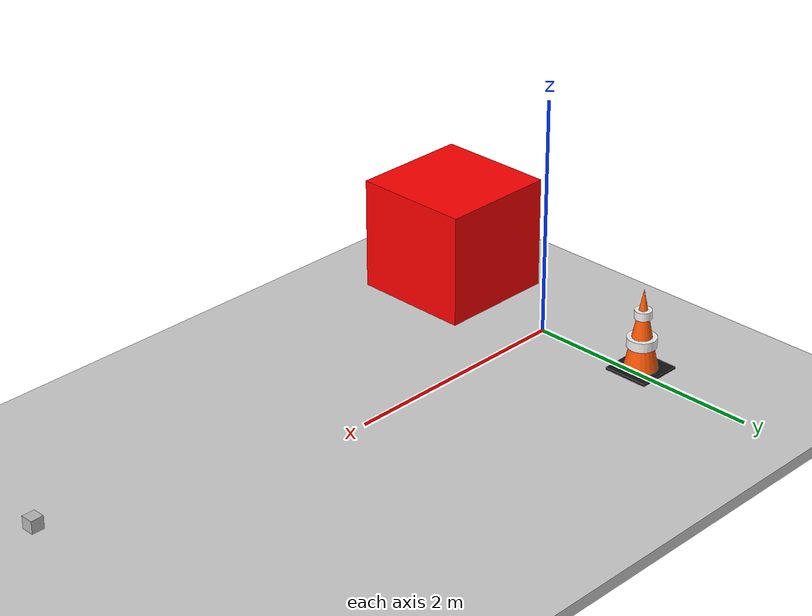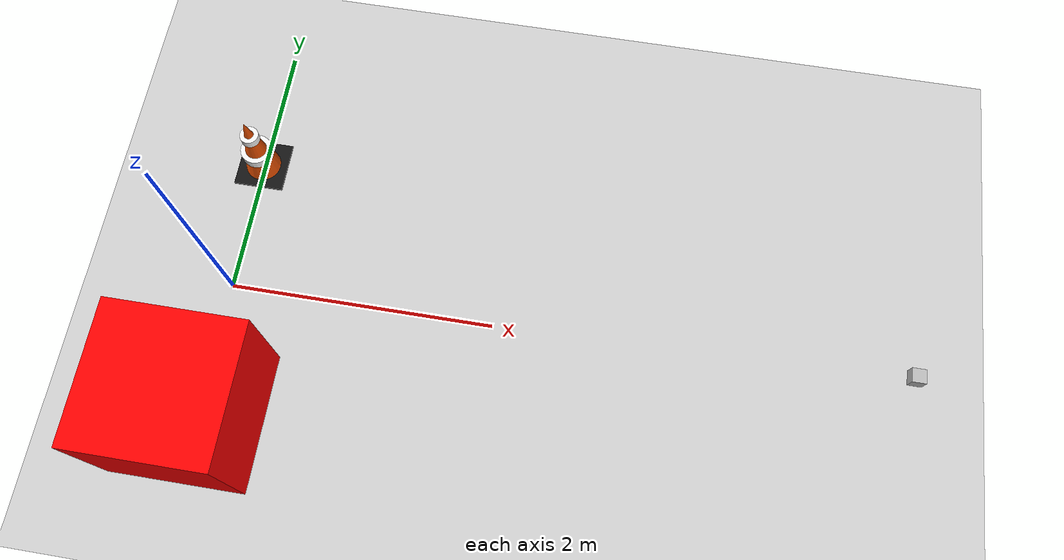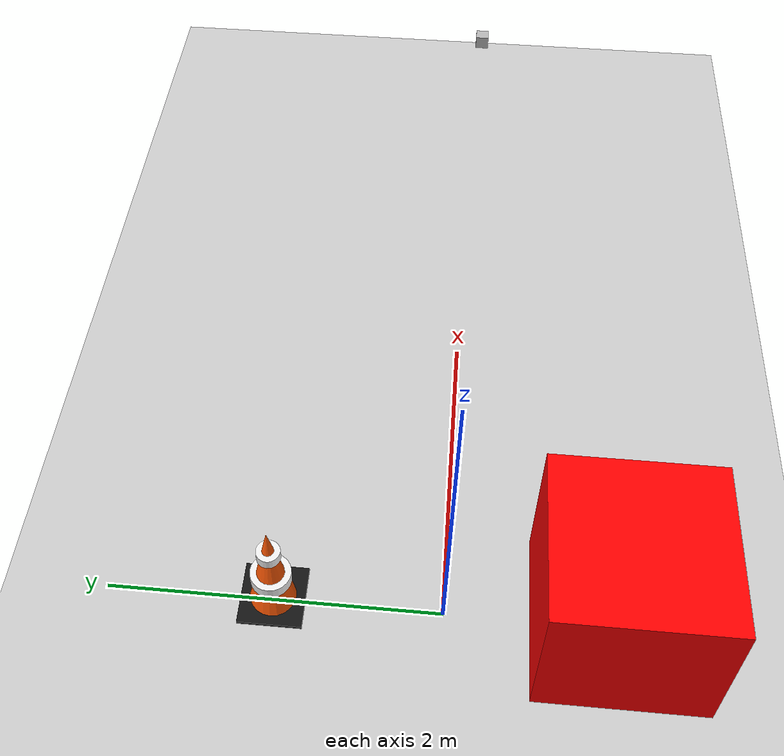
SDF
<?xml version='1.0' encoding='utf-8'?>
<!-- Reduced from Gazebo Sim's sensors_demo.sdf: one RGB-D camera and two image panels. -->
<sdf version="1.11">
  <world name="perception_demo">
    <physics name="1ms" type="ignored">
      <max_step_size>0.001</max_step_size>
      <real_time_factor>1.0</real_time_factor>
    </physics>
    <plugin filename="gz-sim-physics-system" name="gz::sim::systems::Physics">
    </plugin>
    <plugin filename="gz-sim-sensors-system" name="gz::sim::systems::Sensors">
      <render_engine>ogre2</render_engine>
    </plugin>
    <plugin filename="gz-sim-user-commands-system" name="gz::sim::systems::UserCommands">
    </plugin>
    <plugin filename="gz-sim-scene-broadcaster-system" name="gz::sim::systems::SceneBroadcaster">
    </plugin>
    <gui fullscreen="0">
      <plugin filename="MinimalScene" name="3D View">
        <gz-gui>
          <title>3D View</title>
          <property type="bool" key="showTitleBar">false</property>
          <property type="string" key="state">docked</property>
        </gz-gui>
        <engine>ogre2</engine>
        <scene>scene</scene>
        <ambient_light>0.4 0.4 0.4</ambient_light>
        <background_color>0.8 0.8 0.8</background_color>
        <camera_pose>-6 0 6 0 0.5 0</camera_pose>
      </plugin>
      <plugin filename="GzSceneManager" name="Scene Manager">
        <gz-gui>
          <property key="resizable" type="bool">false</property>
          <property key="width" type="double">5</property>
          <property key="height" type="double">5</property>
          <property key="state" type="string">floating</property>
          <property key="showTitleBar" type="bool">false</property>
        </gz-gui>
      </plugin>
      <plugin filename="InteractiveViewControl" name="Interactive view control">
        <gz-gui>
          <property key="resizable" type="bool">false</property>
          <property key="width" type="double">5</property>
          <property key="height" type="double">5</property>
          <property key="state" type="string">floating</property>
          <property key="showTitleBar" type="bool">false</property>
        </gz-gui>
      </plugin>
      <plugin filename="SelectEntities" name="Select Entities">
        <gz-gui>
          <property key="resizable" type="bool">false</property>
          <property key="width" type="double">5</property>
          <property key="height" type="double">5</property>
          <property key="state" type="string">floating</property>
          <property key="showTitleBar" type="bool">false</property>
        </gz-gui>
      </plugin>
      <plugin filename="TransformControl" name="Transform control">
        <gz-gui>
          <property key="resizable" type="bool">false</property>
          <property key="x" type="double">0</property>
          <property key="y" type="double">50</property>
          <property key="width" type="double">250</property>
          <property key="height" type="double">50</property>
          <property key="state" type="string">floating</property>
          <property key="showTitleBar" type="bool">false</property>
        </gz-gui>
      </plugin>
      <plugin filename="WorldControl" name="World control">
        <gz-gui>
          <title>World control</title>
          <property type="bool" key="showTitleBar">false</property>
          <property type="bool" key="resizable">false</property>
          <property type="double" key="height">72</property>
          <property type="double" key="z">1</property>
          <property type="string" key="state">floating</property>
          <anchors target="3D View">
            <line own="left" target="left" />
            <line own="bottom" target="bottom" />
          </anchors>
        </gz-gui>
        <play_pause>true</play_pause>
        <step>true</step>
        <start_paused>false</start_paused>
        <use_event>true</use_event>
      </plugin>
      <plugin filename="ImageDisplay" name="RGB-D color display">
        <gz-gui>
          <title>RGB-D color</title>
          <property key="state" type="string">floating</property>
          <property type="double" key="width">350</property>
          <property type="double" key="height">315</property>
          <property type="double" key="x">20</property>
          <property type="double" key="y">100</property>
        </gz-gui>
        <topic>rgbd_camera/image</topic>
        <topic_picker>false</topic_picker>
      </plugin>
      <plugin filename="ImageDisplay" name="RGB-D depth display">
        <gz-gui>
          <title>RGB-D depth</title>
          <property key="state" type="string">floating</property>
          <property type="double" key="width">350</property>
          <property type="double" key="height">315</property>
          <property type="double" key="x">390</property>
          <property type="double" key="y">100</property>
        </gz-gui>
        <topic>rgbd_camera/depth_image</topic>
        <topic_picker>false</topic_picker>
      </plugin>
    </gui>
    <light type="directional" name="sun">
      <cast_shadows>true</cast_shadows>
      <pose>0 0 10 0 0 0</pose>
      <diffuse>0.8 0.8 0.8 1</diffuse>
      <specular>0.2 0.2 0.2 1</specular>
      <attenuation>
        <range>1000</range>
        <constant>0.9</constant>
        <linear>0.01</linear>
        <quadratic>0.001</quadratic>
      </attenuation>
      <direction>-0.5 0.1 -0.9</direction>
    </light>
    <model name="ground_plane">
      <static>true</static>
      <link name="link">
        <collision name="collision">
          <geometry>
            <box>
              <size>20 20 0.1</size>
            </box>
          </geometry>
        </collision>
        <visual name="visual">
          <geometry>
            <box>
              <size>20 20 0.1</size>
            </box>
          </geometry>
          <material>
            <ambient>0.8 0.8 0.8 1</ambient>
            <diffuse>0.8 0.8 0.8 1</diffuse>
            <specular>0.8 0.8 0.8 1</specular>
          </material>
        </visual>
      </link>
    </model>
    <model name="box">
      <pose>0 -1 0.5 0 0 0</pose>
      <plugin filename="gz-sim-label-system" name="gz::sim::systems::Label">
        <label>2</label>
      </plugin>
      <link name="box_link">
        <inertial>
          <inertia>
            <ixx>1</ixx>
            <ixy>0</ixy>
            <ixz>0</ixz>
            <iyy>1</iyy>
            <iyz>0</iyz>
            <izz>1</izz>
          </inertia>
          <mass>1.0</mass>
        </inertial>
        <collision name="box_collision">
          <geometry>
            <box>
              <size>1 1 1</size>
            </box>
          </geometry>
        </collision>
        <visual name="box_visual">
          <geometry>
            <box>
              <size>1 1 1</size>
            </box>
          </geometry>
          <material>
            <ambient>1 0 0 1</ambient>
            <diffuse>1 0 0 1</diffuse>
            <specular>1 0 0 1</specular>
          </material>
        </visual>
      </link>
    </model>
    <model name="rgbd_camera">
      <static>true</static>
      <pose>5 0 0.5 0 0.0 3.14</pose>
      <link name="link">
        <pose>0.05 0.05 0.05 0 0 0</pose>
        <inertial>
          <mass>0.1</mass>
          <inertia>
            <ixx>0.000166667</ixx>
            <iyy>0.000166667</iyy>
            <izz>0.000166667</izz>
          </inertia>
        </inertial>
        <collision name="collision">
          <geometry>
            <box>
              <size>0.1 0.1 0.1</size>
            </box>
          </geometry>
        </collision>
        <visual name="visual">
          <geometry>
            <box>
              <size>0.1 0.1 0.1</size>
            </box>
          </geometry>
        </visual>
        <sensor name="rgbd_camera" type="rgbd_camera">
          <camera>
            <horizontal_fov>1.047</horizontal_fov>
            <image>
              <width>320</width>
              <height>240</height>
            </image>
            <clip>
              <near>0.1</near>
              <far>100</far>
            </clip>
          </camera>
          <always_on>1</always_on>
          <update_rate>30</update_rate>
          <visualize>true</visualize>
          <topic>rgbd_camera</topic>
          <enable_metrics>true</enable_metrics>
        </sensor>
        <sensor name="segmentation_camera" type="segmentation">
          <topic>rgbd_camera/segmentation</topic>
          <camera>
            <segmentation_type>semantic</segmentation_type>
            <horizontal_fov>1.047</horizontal_fov>
            <image><width>320</width><height>240</height></image>
            <clip><near>0.1</near><far>100</far></clip>
          </camera>
          <always_on>1</always_on>
          <update_rate>30</update_rate>
        </sensor>
      </link>
    </model>
    <model name="traffic_cone">
      <static>true</static>
      <pose>0 1 0.4 0 0 0</pose>
      <plugin filename="gz-sim-label-system" name="gz::sim::systems::Label">
        <label>1</label>
      </plugin>
      <link name="body">
        <collision name="cone_collision">
          <geometry><cone><radius>0.14</radius><length>0.7</length></cone></geometry>
        </collision>
        <visual name="orange_cone">
          <geometry><cone><radius>0.14</radius><length>0.7</length></cone></geometry>
          <material>
            <ambient>1 0.35 0.02 1</ambient>
            <diffuse>1 0.35 0.02 1</diffuse>
          </material>
        </visual>
        <visual name="base">
          <pose>0 0 -0.35 0 0 0</pose>
          <geometry><box><size>0.38 0.38 0.04</size></box></geometry>
          <material>
            <ambient>0.08 0.08 0.08 1</ambient>
            <diffuse>0.08 0.08 0.08 1</diffuse>
          </material>
        </visual>
        <visual name="lower_white_band">
          <pose>0 0 -0.10 0 0 0</pose>
          <geometry><cylinder><radius>0.12</radius><length>0.08</length></cylinder></geometry>
          <material>
            <ambient>0.95 0.95 0.95 1</ambient>
            <diffuse>0.95 0.95 0.95 1</diffuse>
          </material>
        </visual>
        <visual name="upper_white_band">
          <pose>0 0 0.14 0 0 0</pose>
          <geometry><cylinder><radius>0.07</radius><length>0.07</length></cylinder></geometry>
          <material>
            <ambient>0.95 0.95 0.95 1</ambient>
            <diffuse>0.95 0.95 0.95 1</diffuse>
          </material>
        </visual>
      </link>
    </model>
  </world>
</sdf>
